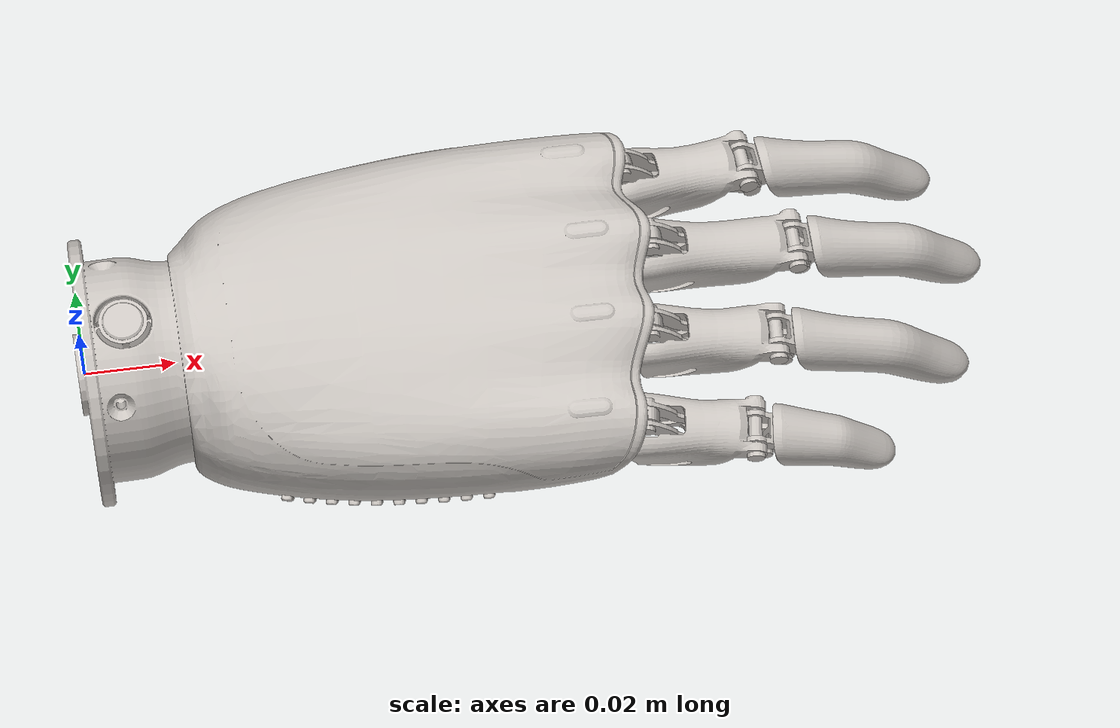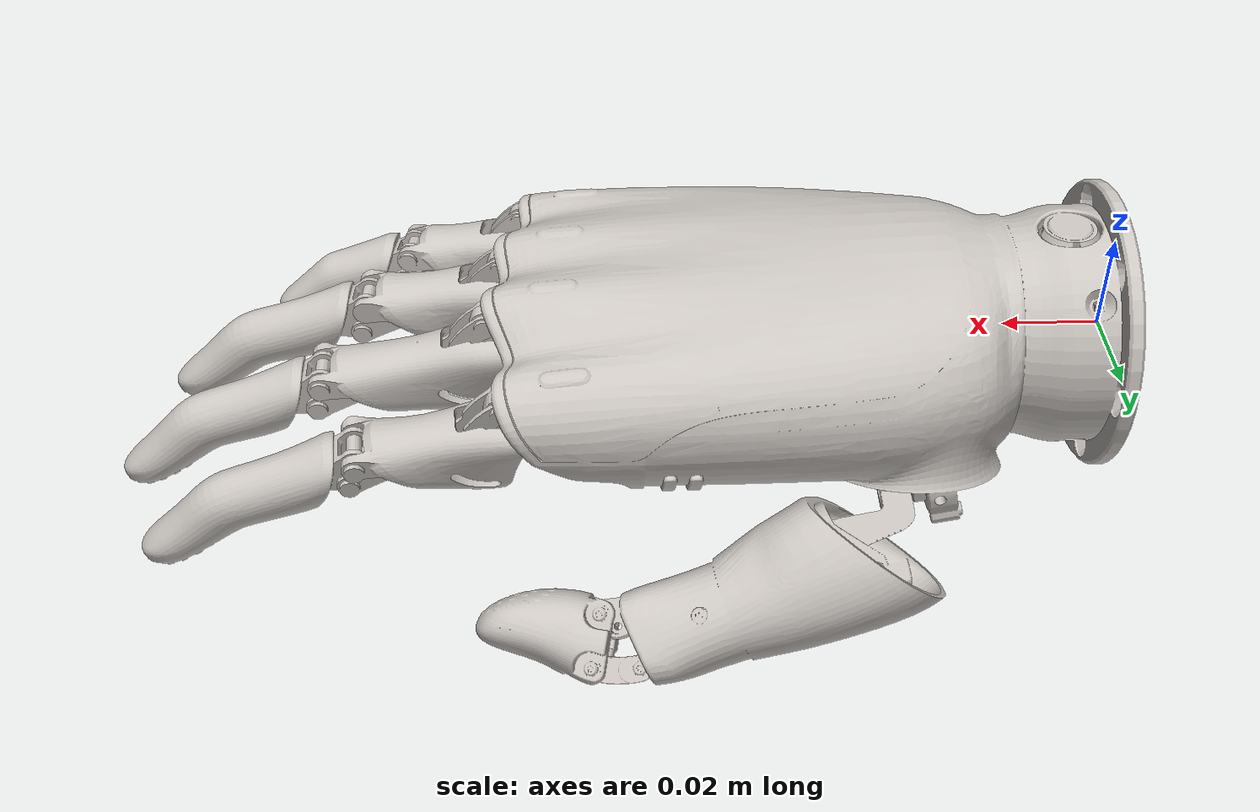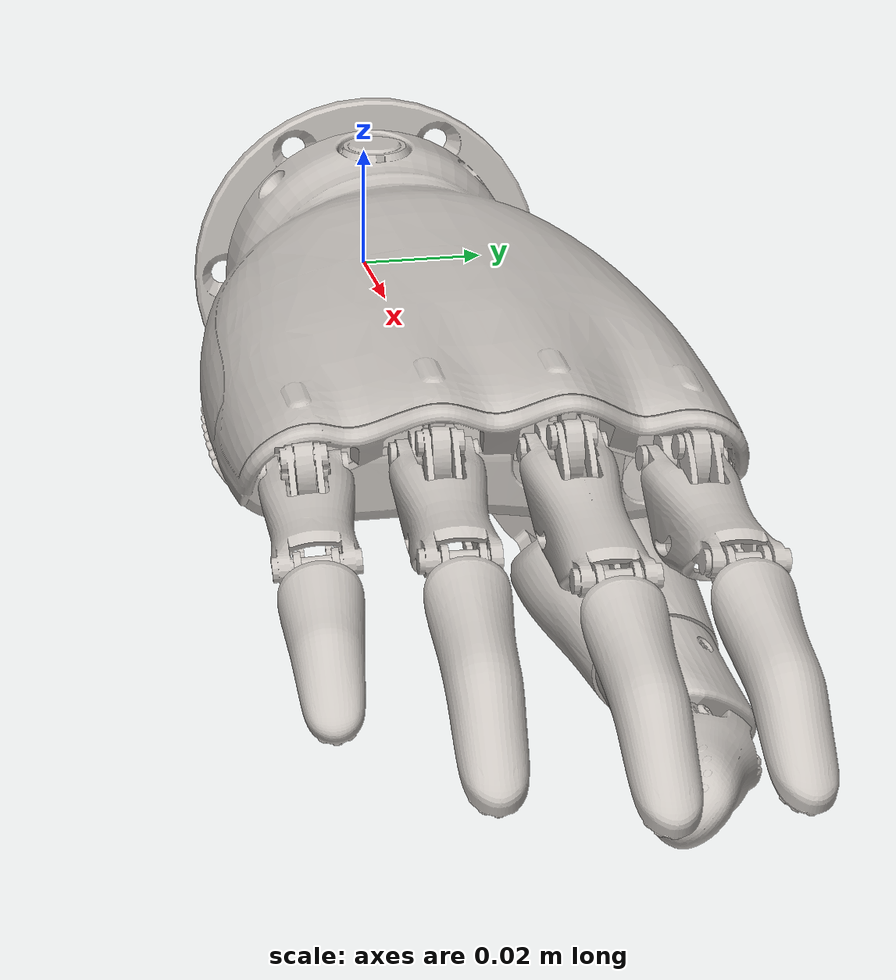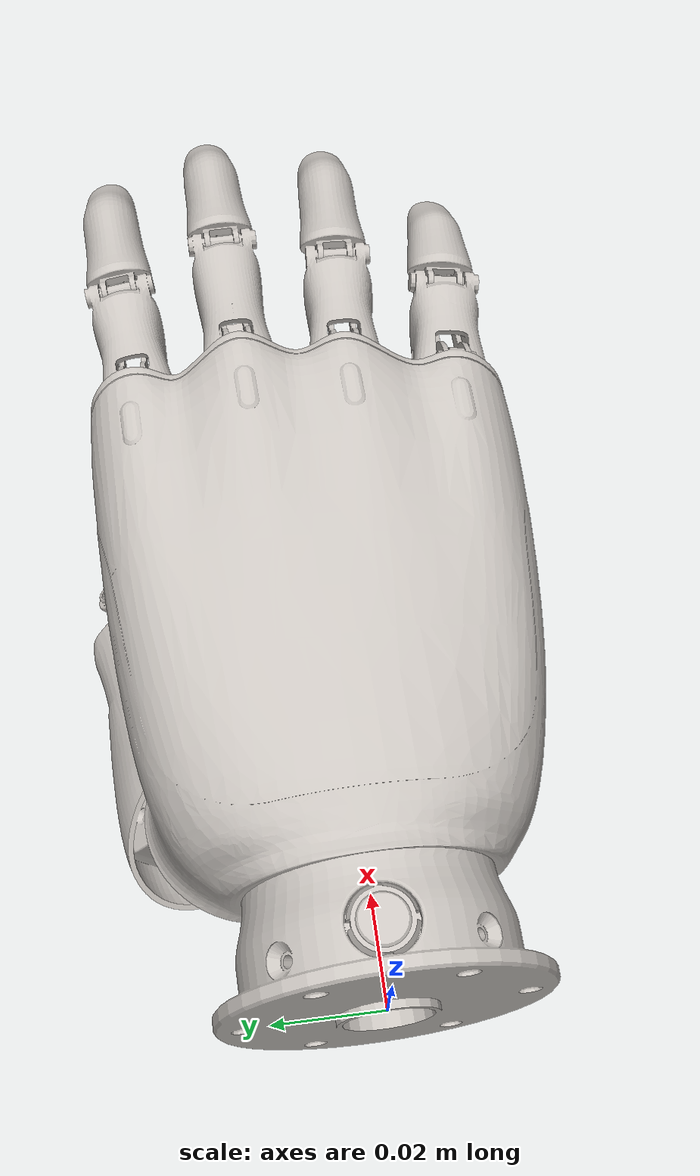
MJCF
<mujoco model="rohand_right">
    <compiler angle="radian" />
    <asset>
        <mesh name="base_link" content_type="model/stl" file="../assets/meshes_r/base_link.STL"/>
        <mesh name="if_proximal_link" content_type="model/stl" file="../assets/meshes_r/if_proximal_link.STL"/>
        <mesh name="if_distal_link" content_type="model/stl" file="../assets/meshes_r/if_distal_link.STL"/>
        <mesh name="if_connecting_link" content_type="model/stl" file="../assets/meshes_r/if_connecting_link.STL"/>
        <mesh name="mf_proximal_link" content_type="model/stl" file="../assets/meshes_r/mf_proximal_link.STL"/>
        <mesh name="mf_distal_link" content_type="model/stl" file="../assets/meshes_r/mf_distal_link.STL"/>
        <mesh name="mf_connecting_link" content_type="model/stl" file="../assets/meshes_r/mf_connecting_link.STL"/>
        <mesh name="rf_proximal_link" content_type="model/stl" file="../assets/meshes_r/rf_proximal_link.STL"/>
        <mesh name="rf_distal_link" content_type="model/stl" file="../assets/meshes_r/rf_distal_link.STL"/>
        <mesh name="rf_connecting_link" content_type="model/stl" file="../assets/meshes_r/rf_connecting_link.STL"/>
        <mesh name="lf_proximal_link" content_type="model/stl" file="../assets/meshes_r/lf_proximal_link.STL"/>
        <mesh name="lf_distal_link" content_type="model/stl" file="../assets/meshes_r/lf_distal_link.STL"/>
        <mesh name="lf_connecting_link" content_type="model/stl" file="../assets/meshes_r/lf_connecting_link.STL"/>
        <mesh name="th_root_link" content_type="model/stl" file="../assets/meshes_r/th_root_link.STL"/>
        <mesh name="th_slider_connecting_link" content_type="model/stl" file="../assets/meshes_r/th_slider_connecting_link.STL"/>
        <mesh name="th_slider_link" content_type="model/stl" file="../assets/meshes_r/th_slider_link.STL"/>
        <mesh name="th_connecting_link" content_type="model/stl" file="../assets/meshes_r/th_connecting_link.STL"/>
        <mesh name="th_distal_link" content_type="model/stl" file="../assets/meshes_r/th_distal_link.STL"/>
        <mesh name="th_proximal_link" content_type="model/stl" file="../assets/meshes_r/th_proximal_link.STL"/>
    </asset>
    <worldbody>
        <body name="base_link" gravcomp="1">
            <geom type="mesh" rgba="0.776471 0.756863 0.737255 1" mesh="base_link"/>
        </body>
        <body name="th_root_link" pos="0.0490826 0.0198778 -0.0230224" quat="0.994021 0.000704684 0.108993 0.00642674" gravcomp="1">
            <inertial pos="0.00191984 0.00319719 -0.00597433" quat="-0.195508 0.354122 0.316551 -0.858004" mass="0.017482" diaginertia="2.15824e-06 1.78948e-06 8.42171e-07"/>
            <joint name="th_root_link" pos="0 0 0" axis="-1 0 0" range="0 1.57" ref="0.7" damping="0.05"/>
            <geom type="mesh" rgba="0.776471 0.756863 0.737255 1" mesh="th_root_link"/>
            <body name="th_slider_connecting_link" pos="0.0150163 0.00377111 -0.0184123" quat="0.655201 -0.265917 -0.659812 0.254261" gravcomp="1">
                <inertial pos="-0.00809998 0.00382843 -0.00282376" quat="0.892632 0.450786 0 0" mass="0.000789049" diaginertia="1.19393e-08 1.07536e-08 1.35034e-09"/>
                <joint name="th_slider_connecting_link" pos="0 0 0" axis="-1 0 0" range="0.0 1.0" ref="0.75" damping="0.03"/>
                <geom type="mesh" rgba="0.776471 0.756863 0.737255 1" mesh="th_slider_connecting_link"/>
                <body name="th_slider_link" pos="0 0.00883641 -0.00651754" gravcomp="1">
                    <inertial pos="-0.00804903 0.00193436 -0.00890089" quat="0.702987 0.0761563 0.0761476 -0.703002" mass="0.0752752" diaginertia="6.05507e-08 4.65637e-08 1.9027e-08"/>
                    <joint name="th_slider_link" pos="0 0 0" axis="-1 0 0" damping="0.05"/>
                    <geom type="mesh" rgba="0.776471 0.756863 0.737255 1" mesh="th_slider_link"/>
                    <body name="th_connecting_link" pos="0.00440345 0.0076881 -0.0314156" quat="0.803914 0.594745 0 0" gravcomp="1">
                        <inertial pos="-0.00373227 -0.00464828 -0.00091513" quat="0.467303 0.530686 0.530686 -0.467303" mass="0.0261208" diaginertia="4.35995e-09 3.91261e-09 1.67325e-09"/>
                        <joint name="th_connecting_link" pos="0 0 0" axis="-1 0 0" damping="0.05"/>
                        <geom type="mesh" rgba="0.776471 0.756863 0.737255 1" mesh="th_connecting_link"/>
                        <body name="th_distal_link" pos="-0.00295 -0.00981212 -0.00131618" gravcomp="1">
                            <inertial pos="-0.00665584 -0.0101877 0.00658848" quat="0.453258 0.54272 0.542731 -0.453272" mass="0.1860659" diaginertia="2.36983e-05 1.85862e-05 1.2918e-05"/>
                            <joint name="th_distal_link" pos="0 0 0" axis="-1 0 0"/>
                            <geom type="mesh" rgba="0.776471 0.756863 0.737255 1" mesh="th_distal_link"/>
                        </body>
                    </body>
                    <body name="th_proximal_link" pos="0.00394993 0.000195499 0.0109735" quat="0.678228 -0.200017 -0.628683 -0.323663" gravcomp="1">
                        <inertial pos="0.0113547 -0.000312971 -0.00565436" quat="-0.175069 0.696448 0.301544 -0.627202" mass="0.0704476" diaginertia="2.20935e-04 2.05412e-04 6.20846e-05"/>
                        <joint name="th_proximal_link" pos="0 0 0" axis="-1 0 0" type="slide" damping="0.5"/>
                        <geom type="mesh" rgba="0.776471 0.756863 0.737255 1" mesh="th_proximal_link"/>
                    </body>
                </body>
            </body>
        </body>
        <body name="if_proximal_link" pos="0.115122 0.0375536 0.0020566" quat="0.295459 0.609378 0.687604 0.261846" gravcomp="1">
            <inertial pos="0.0070298 0.00894962 0.0163319" quat="0.662849 -0.246153 -0.246091 -0.662933" mass="0.0152443" diaginertia="1.5138e-06 1.35281e-06 5.40981e-07"/>
            <joint name="if_proximal_link" pos="0 0 0" axis="1 0 0" ref="0.1" damping="0.03"/>
            <geom type="mesh" rgba="0.776471 0.756863 0.737255 1" mesh="if_proximal_link"/>
            <body name="if_distal_link" pos="0 0.021096 0.029073" gravcomp="1">
                <inertial pos="0.00697876 0.0067486 0.0235874" quat="0.700497 -0.0949982 -0.0951152 -0.70088" mass="0.0342358" diaginertia="5.2505e-06 5.24298e-06 5.95152e-07"/>
                <joint name="if_distal_link" pos="0 0 0" axis="1 0 0" damping="0.01"/>
                <geom type="mesh" rgba="0.776471 0.756863 0.737255 1" mesh="if_distal_link"/>
            </body>
        </body>
        <body name="if_connecting_link" pos="0.122756 0.0353019 0.0067253" quat="0.295636 0.609335 0.687498 0.262025" gravcomp="1">
            <inertial pos="0.00370009 0.00341586 0.0165511" quat="0.701491 -0.0889417 -0.0889417 -0.701491" mass="0.00267235" diaginertia="4.96063e-07 4.86522e-07 1.90482e-08"/>
            <joint name="if_connecting_link" pos="0 0 0" axis="1 0 0"/>
            <geom type="mesh" rgba="0.776471 0.756863 0.737255 1" mesh="if_connecting_link"/>
        </body>
        <body name="mf_proximal_link" pos="0.11888 0.01765 0.0069653" quat="0.00334089 0.702842 0.71133 0.00330105" gravcomp="1">
            <inertial pos="0.0070074 0.0203658 0.00677331" quat="0.466516 0.531416 0.531075 -0.466818" mass="0.0182531" diaginertia="2.54837e-06 2.38777e-06 6.77106e-07"/>
            <joint name="mf_proximal_link" pos="0 0 0" axis="1 0 0" ref="0.1" damping="0.03"/>
            <geom type="mesh" rgba="0.776471 0.756863 0.737255 1" mesh="mf_proximal_link"/>
            <body name="mf_distal_link" pos="0 0.040241 0.0078924" gravcomp="1">
                <inertial pos="0.00693657 0.0214322 0.0119471" quat="0.355221 0.611869 0.610762 -0.355534" mass="0.0342357" diaginertia="5.2505e-06 5.24298e-06 5.95151e-07"/>
                <joint name="mf_distal_link" pos="0 0 0" axis="1 0 0" damping="0.01"/>
                <geom type="mesh" rgba="0.776471 0.756863 0.737255 1" mesh="mf_distal_link"/>
            </body>
        </body>
        <body name="mf_connecting_link" pos="0.126338 0.0144304 0.0113662" quat="0.000565756 -0.702408 -0.711774 0.000558312" gravcomp="1">
            <inertial pos="0.00370005 0.0163936 0.0102722" quat="0.357408 0.610131 0.610131 -0.357408" mass="0.00285033" diaginertia="6.82745e-07 6.72641e-07 2.02362e-08"/>
            <joint name="mf_connecting_link" pos="0 0 0" axis="1 0 0"/>
            <geom type="mesh" rgba="0.776471 0.756863 0.737255 1" mesh="mf_connecting_link"/>
        </body>
        <body name="rf_proximal_link" pos="0.11663 -0.002443 0.0062162" quat="0.726796 -4.00974e-05 -3.78937e-05 0.686853" gravcomp="1">
            <inertial pos="0.00704135 -0.0178884 -0.0046376" quat="0.483953 0.515519 0.515557 -0.483973" mass="0.0151473" diaginertia="1.51374e-06 1.35267e-06 5.40891e-07"/>
            <joint name="rf_proximal_link" pos="0 0 0" axis="1 0 0" ref="0.1" damping="0.03"/>
            <geom type="mesh" rgba="0.776471 0.756863 0.737255 1" mesh="rf_proximal_link"/>
            <body name="rf_distal_link" pos="0 -0.035592 -0.0048427" gravcomp="1">
                <inertial pos="0.00697877 -0.0217085 -0.0114017" quat="0.3627 0.606553 0.607179 -0.363148" mass="0.0342355" diaginertia="5.25042e-06 5.2429e-06 5.95154e-07"/>
                <joint name="rf_distal_link" pos="0 0 0" axis="1 0 0" damping="0.01"/>
                <geom type="mesh" rgba="0.776471 0.756863 0.737255 1" mesh="rf_distal_link"/>
            </body>
        </body>
        <body name="rf_connecting_link" pos="0.123853 -0.00613089 0.0106155" quat="0.726833 -0.0001276 -0.000135035 0.686814" gravcomp="1">
            <inertial pos="0.00370009 -0.0143262 -0.00896467" quat="0.357577 0.610032 0.610032 -0.357577" mass="0.00267235" diaginertia="4.96063e-07 4.86522e-07 1.90482e-08"/>
            <joint name="rf_connecting_link" pos="0 0 0" axis="1 0 0"/>
            <geom type="mesh" rgba="0.776471 0.756863 0.737255 1" mesh="rf_connecting_link"/>
        </body>
        <body name="lf_proximal_link" pos="0.11331 -0.022575 0.0042735" quat="0.719041 -0.204609 -0.237125 0.620393" gravcomp="1">
            <inertial pos="0.00699992 -0.0101266 -0.01254" quat="0.289166 0.645275 0.645279 -0.289168" mass="0.0142656" diaginertia="1.53678e-06 1.36656e-06 5.17078e-07"/>
            <joint name="lf_proximal_link" pos="0 0 0" axis="1 0 0" ref="0.1" damping="0.03"/>
            <geom type="mesh" rgba="0.776471 0.756863 0.737255 1" mesh="lf_proximal_link"/>
            <body name="lf_distal_link" pos="0 -0.022718 -0.022439" gravcomp="1">
                <inertial pos="0.00705269 -0.00763281 -0.0155353" quat="0.690987 -0.150197 -0.15019 -0.690956" mass="0.0202843" diaginertia="1.52435e-06 1.4952e-06 3.06212e-07"/>
                <joint name="lf_distal_link" pos="0 0 0" axis="1 0 0" damping="0.01"/>
                <geom type="mesh" rgba="0.776471 0.756863 0.737255 1" mesh="lf_distal_link"/>
            </body>
        </body>
        <body name="lf_connecting_link" pos="0.12024 -0.027096 0.0083686" quat="0.719041 -0.204609 -0.237125 0.620393" gravcomp="1">
            <inertial pos="0.00370001 -0.00492796 -0.0142868" quat="0.694427 -0.13331 -0.13331 -0.694427" mass="0.00247299" diaginertia="3.87303e-07 3.78315e-07 1.76363e-08"/>
            <joint name="lf_connecting_link" pos="0 0 0" axis="1 0 0"/>
            <geom type="mesh" rgba="0.776471 0.756863 0.737255 1" mesh="lf_connecting_link"/>
        </body>
    </worldbody>
    <contact>
        <exclude body1="base_link" body2="if_proximal_link"/>
        <exclude body1="base_link" body2="if_distal_link"/>
        <exclude body1="base_link" body2="if_connecting_link"/>
        <exclude body1="if_connecting_link" body2="if_proximal_link"/>
        <exclude body1="if_connecting_link" body2="if_distal_link"/>
        <exclude body1="if_proximal_link" body2="if_distal_link"/>
        <exclude body1="base_link" body2="mf_proximal_link"/>
        <exclude body1="base_link" body2="mf_distal_link"/>
        <exclude body1="base_link" body2="mf_connecting_link"/>
        <exclude body1="mf_connecting_link" body2="mf_proximal_link"/>
        <exclude body1="mf_connecting_link" body2="mf_distal_link"/>
        <exclude body1="mf_proximal_link" body2="mf_distal_link"/>
        <exclude body1="base_link" body2="rf_proximal_link"/>
        <exclude body1="base_link" body2="rf_distal_link"/>
        <exclude body1="base_link" body2="rf_connecting_link"/>
        <exclude body1="rf_connecting_link" body2="rf_proximal_link"/>
        <exclude body1="rf_connecting_link" body2="rf_distal_link"/>
        <exclude body1="rf_proximal_link" body2="rf_distal_link"/>
        <exclude body1="base_link" body2="lf_proximal_link"/>
        <exclude body1="base_link" body2="lf_connecting_link"/>
        <exclude body1="lf_proximal_link" body2="lf_distal_link"/>
        <exclude body1="lf_connecting_link" body2="lf_proximal_link"/>
        <exclude body1="lf_connecting_link" body2="lf_distal_link"/>
        <exclude body1="base_link" body2="th_root_link"/>
        <exclude body1="th_root_link" body2="base_link"/>
        <exclude body1="th_root_link" body2="th_slider_connecting_link"/>
        <exclude body1="th_root_link" body2="th_slider_link"/>
        <exclude body1="th_root_link" body2="th_connecting_link"/>
        <exclude body1="th_root_link" body2="th_distal_link"/>
        <exclude body1="th_root_link" body2="th_proximal_link"/>
        <exclude body1="th_slider_connecting_link" body2="base_link"/>
        <exclude body1="th_slider_connecting_link" body2="th_slider_link"/>
        <exclude body1="th_slider_connecting_link" body2="th_connecting_link"/>
        <exclude body1="th_slider_connecting_link" body2="th_distal_link"/>
        <exclude body1="th_slider_connecting_link" body2="th_proximal_link"/>
        <exclude body1="th_slider_link" body2="base_link"/>
        <exclude body1="th_slider_link" body2="th_connecting_link"/>
        <exclude body1="th_slider_link" body2="th_distal_link"/>
        <exclude body1="th_slider_link" body2="th_proximal_link"/>
        <exclude body1="th_connecting_link" body2="base_link"/>
        <exclude body1="th_connecting_link" body2="th_distal_link"/>
        <exclude body1="th_connecting_link" body2="th_proximal_link"/>
        <exclude body1="th_distal_link" body2="base_link"/>
        <exclude body1="th_distal_link" body2="th_proximal_link"/>
        <exclude body1="th_proximal_link" body2="base_link"/>
    </contact>
    <equality>
        <connect body1="if_distal_link" body2="if_connecting_link" anchor="-0.00328 -0.00436 0.00634" solimp="0.95 0.99 0.001" solref="0.005 1"/>
        <connect body1="mf_distal_link" body2="mf_connecting_link" anchor="-0.00326 0.00138 0.00756" solimp="0.95 0.99 0.001" solref="0.005 1"/>
        <connect body1="rf_distal_link" body2="rf_connecting_link" anchor="-0.00328 -0.00157 -0.00753" solimp="0.95 0.99 0.001" solref="0.005 1"/>
        <connect body1="lf_distal_link" body2="lf_connecting_link" anchor="-0.00330 0.00266 -0.00704" solimp="0.95 0.99 0.001" solref="0.005 1"/>
        <connect body1="th_proximal_link" body2="th_root_link" anchor="0.0046 -0.0055 0.002" solimp="0.95 0.99 0.001" solref="0.005 1"/>
        <connect body1="th_distal_link" body2="th_proximal_link" anchor="0 0.00027 0.0113" solimp="0.8 0.95 0.001" solref="0.005 1"/>
    </equality>
    <actuator>
        <position name="index_finger" joint="if_proximal_link" kp="1" ctrlrange="0 1.44"/>
        <position name="middle_finger" joint="mf_proximal_link" kp="1" ctrlrange="0 1.44"/>
        <position name="ring_finger" joint="rf_proximal_link" kp="1" ctrlrange="0 1.44"/>
        <position name="little_finger" joint="lf_proximal_link" kp="1" ctrlrange="0 1.44"/>
        <position name="thumb_root" joint="th_root_link" kp="1" ctrlrange="0 1.57"/>
        <position name="thumb" joint="th_slider_connecting_link" kp="1" ctrlrange="0.0 1.0"/>
    </actuator>
</mujoco>
